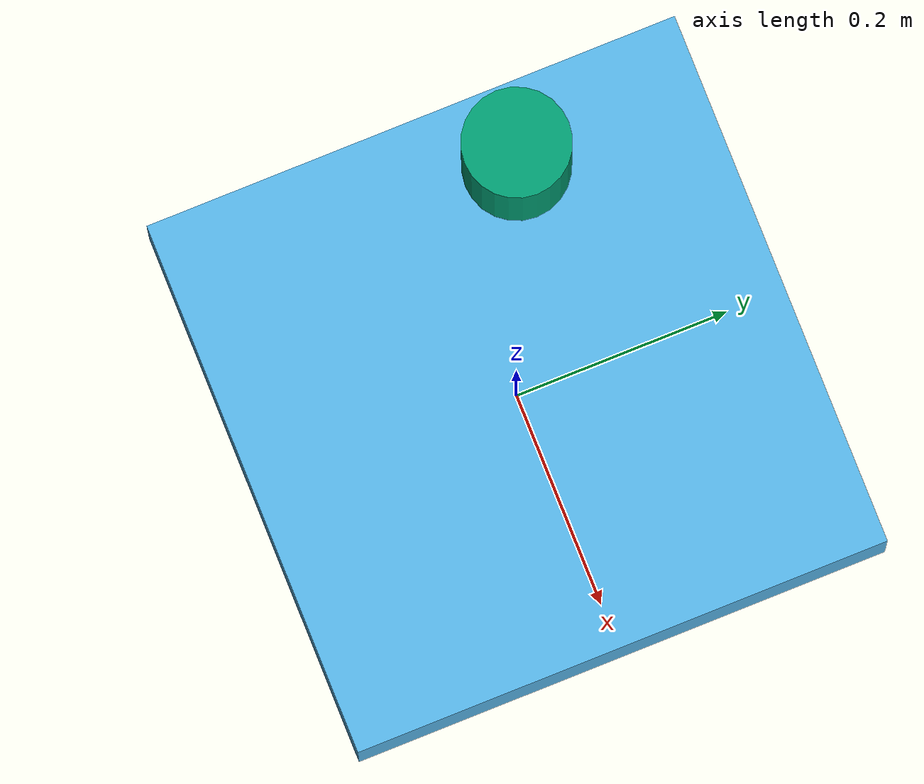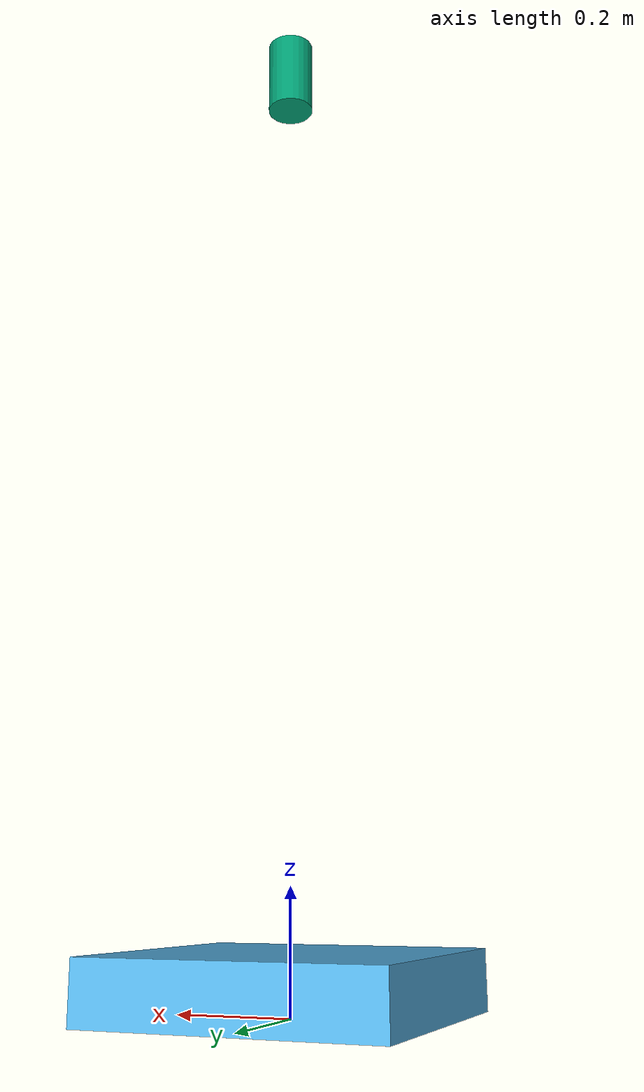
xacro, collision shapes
<?xml version="1.0"?>
<robot xmlns:xacro="http://www.ros.org/wiki/xacro" name="example">

  <!-- Base Footprint -->
  <link name="base_footprint" />

  <!-- Base Link -->
  <joint name="footprint" type="fixed" >
   <parent link="base_footprint" />
    <child link="base_link" />
    <origin xyz="0 0 0.05" rpy="0 0 0" />
  </joint>
  <link name="base_link" >
    <visual>
      <geometry>
        <box size="0.5 0.5 0.1" />
      </geometry>
    </visual>
    <collision>
      <geometry>
        <box size="0.5 0.5 0.1" />
      </geometry>
    </collision>
    <inertial>
      <origin xyz="0 0 0"/>
      <mass value="10"/>
      <inertia ixx="3.0" ixy="0.0" ixz="0.0"
               iyy="3.0" iyz="0.0"
               izz="3.0" />
    </inertial>
  </link>

  <xacro:include filename="$(find velodyne_description)/urdf/HDL-32E.urdf.xacro"/>
  <HDL-32E parent="base_link" name="velodyne" topic="/velodyne_points" hz="10" samples="1100">
    <origin xyz="0 0 1.6" rpy="0 0 0" />
  </HDL-32E>

</robot>

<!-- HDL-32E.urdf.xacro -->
<robot xmlns:xacro="http://www.ros.org/wiki/xacro" name="HDL-32E">
  <xacro:property name="M_PI" value="3.1415926535897931" />
  <xacro:macro name="HDL-32E" params="*origin parent:=base_link name:=velodyne tf_prefix:='' topic:=/velodyne_points organize_cloud:=false hz:=10 lasers:=32 samples:=2187 collision_range:=0.3 min_range:=0.9 max_range:=130.0 noise:=0.008 min_angle:=-${M_PI} max_angle:=${M_PI} gpu:=false">

    <joint name="${name}_base_mount_joint" type="fixed">
      <xacro:insert_block name="origin" />
      <parent link="${parent}"/>
      <child link="${name}_base_link"/>
    </joint>

    <link name="${name}_base_link">
      <inertial>
        <mass value="1.0"/>
        <origin xyz="0 0 0.07212"/>
        <inertia ixx="${(1.0 * (3.0*0.04267*0.04267 + 0.14424*0.14424)) / 12.0}" ixy="0" ixz="0"
          iyy="${(1.0 * (3.0*0.04267*0.04267 + 0.14424*0.14424)) / 12.0}" iyz="0"
          izz="${0.5 * 1.0 * (0.04267*0.04267)}"/>
      </inertial>
      <visual>
        <geometry>
          <mesh filename="package://velodyne_description/meshes/HDL32E_base.dae" />
        </geometry>
      </visual>
      <collision>
        <origin rpy="0 0 0" xyz="0 0 0.07212"/>
        <geometry>
          <cylinder radius="0.04267" length="0.14424"/>
        </geometry>
      </collision>
    </link>

    <joint name="${name}_base_scan_joint" type="fixed" >
      <origin xyz="0 0 0.09081" rpy="0 0 0" />
      <parent link="${name}_base_link" />
      <child link="${name}"/>
    </joint>

    <link name="${name}">
      <inertial>
        <mass value="0.01"/>
        <origin xyz="0 0 0"/>
        <inertia ixx="1e-7" ixy="0" ixz="0" iyy="1e-7" iyz="0" izz="1e-7"/>
      </inertial>
      <visual>
        <origin xyz="0 0 -0.09081" rpy="0 0 0" />
        <geometry>
          <mesh filename="package://velodyne_description/meshes/HDL32E_scan.dae" />
        </geometry>
      </visual>
      <collision>
        <geometry>
          <sphere radius="0"/>
        </geometry>
      </collision>
    </link>

    <!-- Gazebo requires the velodyne_gazebo_plugins package -->
    <gazebo reference="${name}">
      <xacro:if value="${gpu}">
        <sensor type="gpu_ray" name="${name}-HDL32E">
          <pose>0 0 0 0 0 0</pose>
          <visualize>false</visualize>
          <update_rate>${hz}</update_rate>
          <ray>
            <scan>
              <horizontal>
                <samples>${samples}</samples>
                <resolution>1</resolution>
                <min_angle>${min_angle}</min_angle>
                <max_angle>${max_angle}</max_angle>
              </horizontal>
              <vertical>
                <samples>${lasers}</samples>
                <resolution>1</resolution>
                <min_angle>-${5.0*M_PI/180.0}</min_angle>
                <max_angle> ${85.0*M_PI/180.0}</max_angle>
              </vertical>
            </scan>
            <range>
              <min>${collision_range}</min>
              <max>${max_range+1}</max>
              <resolution>0.001</resolution>
            </range>
            <noise>
              <type>gaussian</type>
              <mean>0.0</mean>
              <stddev>0.0</stddev>
            </noise>
          </ray>
          <plugin name="gazebo_ros_laser_controller" filename="libgazebo_ros_velodyne_laser.so">
            <ros>
              <namespace>/${name}</namespace>
              <remapping>~/out:=${topic}</remapping>
            </ros>
            <tf_prefix>${tf_prefix}</tf_prefix>
            <frame_name>${name}</frame_name>
            <organize_cloud>${organize_cloud}</organize_cloud>
            <min_range>${min_range}</min_range>
            <max_range>${max_range}</max_range>
            <gaussian_noise>${noise}</gaussian_noise>
          </plugin>
        </sensor>
      </xacro:if>
      <xacro:unless value="${gpu}">
        <sensor type="ray" name="${name}-HDL32E">
          <pose>0 0 0 0 0 0</pose>
          <visualize>false</visualize>
          <update_rate>${hz}</update_rate>
          <ray>
            <scan>
              <horizontal>
                <samples>${samples}</samples>
                <resolution>1</resolution>
                <min_angle>${min_angle}</min_angle>
                <max_angle>${max_angle}</max_angle>
              </horizontal>
              <vertical>
                <samples>${lasers}</samples>
                <resolution>1</resolution>
                <min_angle>-${5.0*M_PI/180.0}</min_angle>
                <max_angle> ${85.0*M_PI/180.0}</max_angle>
              </vertical>
            </scan>
            <range>
              <min>${collision_range}</min>
              <max>${max_range+1}</max>
              <resolution>0.001</resolution>
            </range>
            <noise>
              <type>gaussian</type>
              <mean>0.0</mean>
              <stddev>0.0</stddev>
            </noise>
          </ray>
          <plugin name="gazebo_ros_laser_controller" filename="libgazebo_ros_velodyne_laser.so">
            <ros>
              <namespace>/${name}</namespace>
              <remapping>~/out:=${topic}</remapping>
            </ros>
            <tf_prefix>${tf_prefix}</tf_prefix>
            <frame_name>${name}</frame_name>
            <organize_cloud>${organize_cloud}</organize_cloud>
            <min_range>${min_range}</min_range>
            <max_range>${max_range}</max_range>
            <gaussian_noise>${noise}</gaussian_noise>
          </plugin>
        </sensor>
      </xacro:unless>
    </gazebo>

  </xacro:macro>
</robot>
